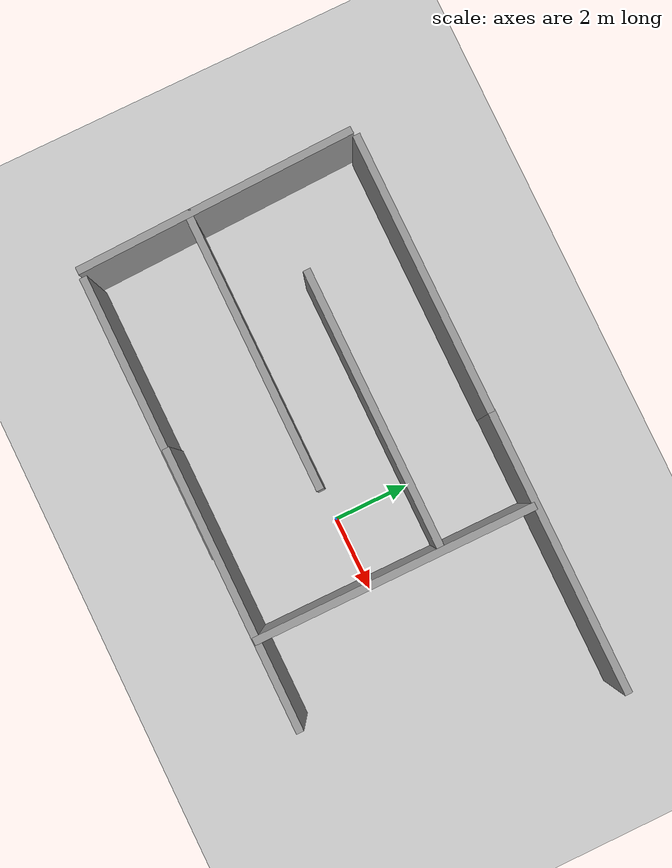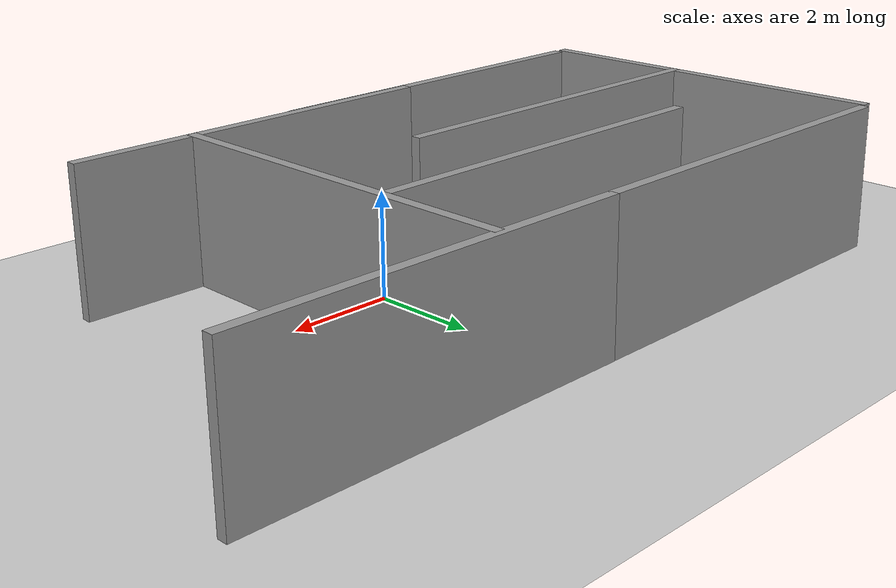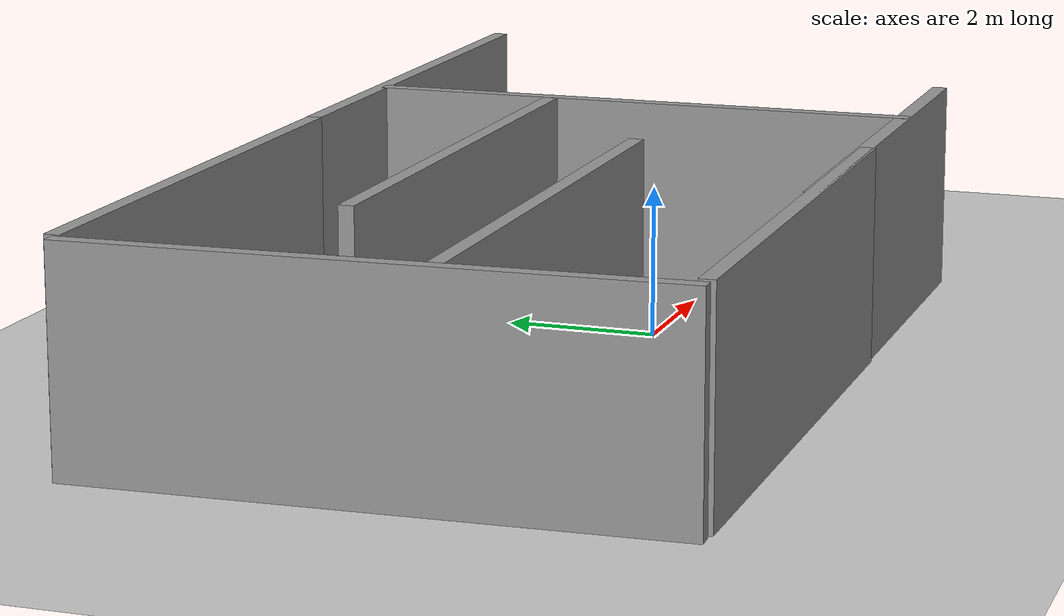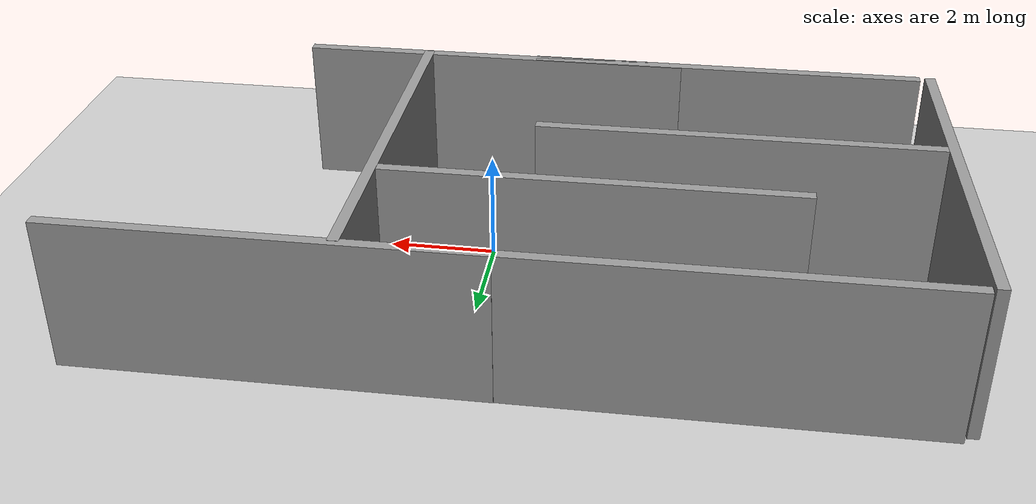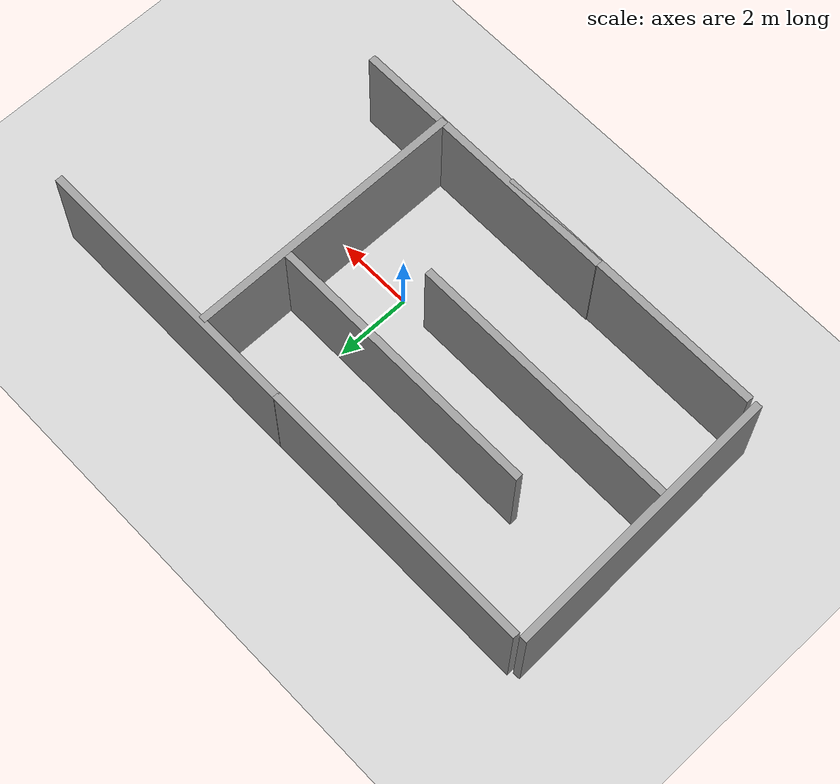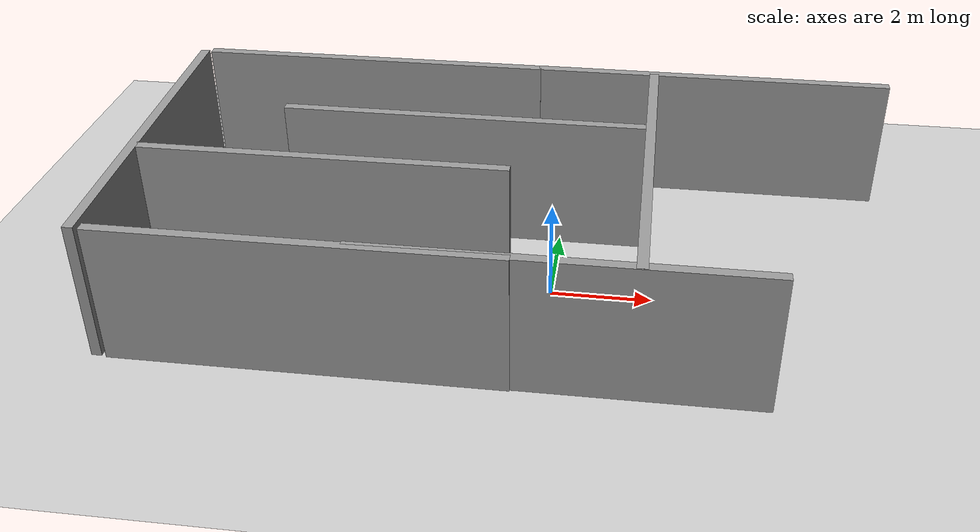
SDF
<sdf version="1.4">
 <world name="default">
  <light name="sun" type="directional">
   <pose>0 0 10 0 -0 0</pose>
   <diffuse>0.8 0.8 0.8 1</diffuse>
   <specular>0.2 0.2 0.2 1</specular>
   <attenuation>
    <range>1000</range>
    <constant>0.9</constant>
    <linear>0.01</linear>
    <quadratic>0.001</quadratic>
   </attenuation>
   <direction>-0.5 0.1 -0.9</direction>
  </light>
  <plugin name="ros_interface_plugin" filename="librotors_gazebo_ros_interface_plugin.so"/>
  <model name="ground_plane">
   <static>1</static>
   <link name="link">
    <collision name="collision">
     <geometry><plane><normal>0 0 1</normal><size>100 100</size></plane></geometry>
     <surface><friction><ode><mu>100</mu><mu2>50</mu2></ode></friction></surface>
    </collision>
    <visual name="visual">
     <cast_shadows>0</cast_shadows>
     <geometry><plane><normal>0 0 1</normal><size>100 100</size></plane></geometry>
     <material>
      <script><uri>file://media/materials/scripts/gazebo.material</uri><name>Gazebo/Grey</name></script>
     </material>
    </visual>
    <velocity_decay><linear>0</linear><angular>0</angular></velocity_decay>
   </link>
  </model>
  <physics type="ode">
   <max_step_size>0.001</max_step_size>
   <real_time_factor>1</real_time_factor>
   <real_time_update_rate>1000</real_time_update_rate>
   <gravity>0 0 -9.8</gravity>
  </physics>
  <scene><ambient>0.4 0.4 0.4 1</ambient><background>0.7 0.7 0.7 1</background><shadows>1</shadows></scene>
  <spherical_coordinates>
   <surface_model>EARTH_WGS84</surface_model>
   <latitude_deg>0</latitude_deg>
   <longitude_deg>0</longitude_deg>
   <elevation>0</elevation>
   <heading_deg>0</heading_deg>
  </spherical_coordinates>
  <model name="grey_wall">
   <static>1</static>
   <link name="link">
    <pose>0 0 1.4 0 -0 0</pose>
    <collision name="collision"><geometry><box><size>7.5 0.2 2.8</size></box></geometry></collision>
    <visual name="visual">
     <cast_shadows>0</cast_shadows>
     <geometry><box><size>7.5 0.2 2.8</size></box></geometry>
     <material>
      <script>
       <uri>model://grey_wall/materials/scripts</uri>
       <uri>model://grey_wall/materials/textures</uri>
       <name>vrc/grey_wall</name>
      </script>
     </material>
    </visual>
    <velocity_decay><linear>0</linear><angular>0</angular></velocity_decay>
   </link>
   <pose>-4.45669 4.51369 0 0 -0 0</pose>
  </model>
  <model name="grey_wall_0">
   <static>1</static>
   <link name="link">
    <pose>0 0 1.4 0 -0 0</pose>
    <collision name="collision"><geometry><box><size>7.5 0.2 2.8</size></box></geometry></collision>
    <visual name="visual">
     <cast_shadows>0</cast_shadows>
     <geometry><box><size>7.5 0.2 2.8</size></box></geometry>
     <material>
      <script>
       <uri>model://grey_wall/materials/scripts</uri>
       <uri>model://grey_wall/materials/textures</uri>
       <name>vrc/grey_wall</name>
      </script>
     </material>
    </visual>
    <velocity_decay><linear>0</linear><angular>0</angular></velocity_decay>
   </link>
   <pose>-4.17438 -2.94975 0 0 -0 0</pose>
  </model>
  <model name="grey_wall_1">
   <static>1</static>
   <link name="link">
    <pose>0 0 1.4 0 -0 0</pose>
    <collision name="collision"><geometry><box><size>7.5 0.2 2.8</size></box></geometry></collision>
    <visual name="visual">
     <cast_shadows>0</cast_shadows>
     <geometry><box><size>7.5 0.2 2.8</size></box></geometry>
     <material>
      <script>
       <uri>model://grey_wall/materials/scripts</uri>
       <uri>model://grey_wall/materials/textures</uri>
       <name>vrc/grey_wall</name>
      </script>
     </material>
    </visual>
    <velocity_decay><linear>0</linear><angular>0</angular></velocity_decay>
   </link>
   <pose>-8.24091 0.730795 0 0 0 -1.53854</pose>
  </model>
  <model name="grey_wall_2">
   <static>1</static>
   <link name="link">
    <pose>0 0 1.4 0 -0 0</pose>
    <collision name="collision"><geometry><box><size>7.5 0.2 2.8</size></box></geometry></collision>
    <visual name="visual">
     <cast_shadows>0</cast_shadows>
     <geometry><box><size>7.5 0.2 2.8</size></box></geometry>
     <material>
      <script>
       <uri>model://grey_wall/materials/scripts</uri>
       <uri>model://grey_wall/materials/textures</uri>
       <name>vrc/grey_wall</name>
      </script>
     </material>
    </visual>
    <velocity_decay><linear>0</linear><angular>0</angular></velocity_decay>
   </link>
   <pose>-4.55904 0 0 0 -0 0</pose>
  </model>
  <model name="grey_wall_3">
   <static>1</static>
   <link name="link">
    <pose>0 0 1.4 0 -0 0</pose>
    <collision name="collision"><geometry><box><size>7.5 0.2 2.8</size></box></geometry></collision>
    <visual name="visual">
     <cast_shadows>0</cast_shadows>
     <geometry><box><size>7.5 0.2 2.8</size></box></geometry>
     <material>
      <script>
       <uri>model://grey_wall/materials/scripts</uri>
       <uri>model://grey_wall/materials/textures</uri>
       <name>vrc/grey_wall</name>
      </script>
     </material>
    </visual>
    <velocity_decay><linear>0</linear><angular>0</angular></velocity_decay>
   </link>
   <pose>1.76758 0.74778 0.002123 0 0 -1.57102</pose>
  </model>
  <model name="grey_wall_4">
   <static>1</static>
   <link name="link">
    <pose>0 0 1.4 0 -0 0</pose>
    <collision name="collision"><geometry><box><size>7.5 0.2 2.8</size></box></geometry></collision>
    <visual name="visual">
     <cast_shadows>0</cast_shadows>
     <geometry><box><size>7.5 0.2 2.8</size></box></geometry>
     <material>
      <script>
       <uri>model://grey_wall/materials/scripts</uri>
       <uri>model://grey_wall/materials/textures</uri>
       <name>vrc/grey_wall</name>
      </script>
     </material>
    </visual>
    <velocity_decay><linear>0</linear><angular>0</angular></velocity_decay>
   </link>
   <pose>0.431481 -2.92293 0 0 -0 0</pose>
  </model>
  <model name="grey_wall_5">
   <static>1</static>
   <link name="link">
    <pose>0 0 1.4 0 -0 0</pose>
    <collision name="collision"><geometry><box><size>7.5 0.2 2.8</size></box></geometry></collision>
    <visual name="visual">
     <cast_shadows>0</cast_shadows>
     <geometry><box><size>7.5 0.2 2.8</size></box></geometry>
     <material>
      <script>
       <uri>model://grey_wall/materials/scripts</uri>
       <uri>model://grey_wall/materials/textures</uri>
       <name>vrc/grey_wall</name>
      </script>
     </material>
    </visual>
    <velocity_decay><linear>0</linear><angular>0</angular></velocity_decay>
   </link>
   <pose>-2 2 0 0 -0 0</pose>
  </model>
  <model name="grey_wall_6">
   <static>1</static>
   <link name="link">
    <pose>0 0 1.4 0 -0 0</pose>
    <collision name="collision"><geometry><box><size>7.5 0.2 2.8</size></box></geometry></collision>
    <visual name="visual">
     <cast_shadows>0</cast_shadows>
     <geometry><box><size>7.5 0.2 2.8</size></box></geometry>
     <material>
      <script>
       <uri>model://grey_wall/materials/scripts</uri>
       <uri>model://grey_wall/materials/textures</uri>
       <name>vrc/grey_wall</name>
      </script>
     </material>
    </visual>
    <velocity_decay><linear>0</linear><angular>0</angular></velocity_decay>
   </link>
   <pose>3 4.52028 0 0 -0 0</pose>
  </model>
 </world>
</sdf>
